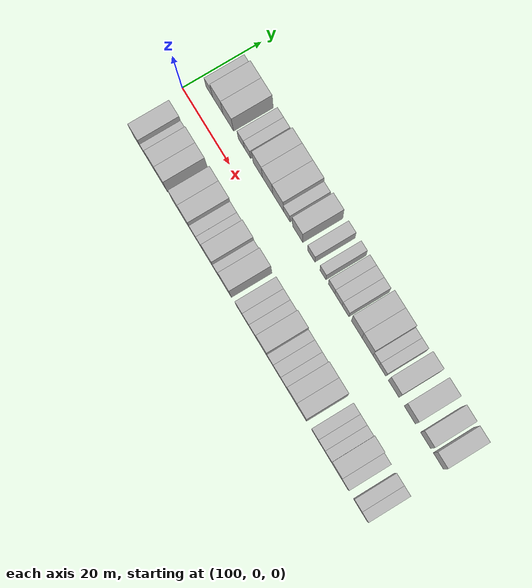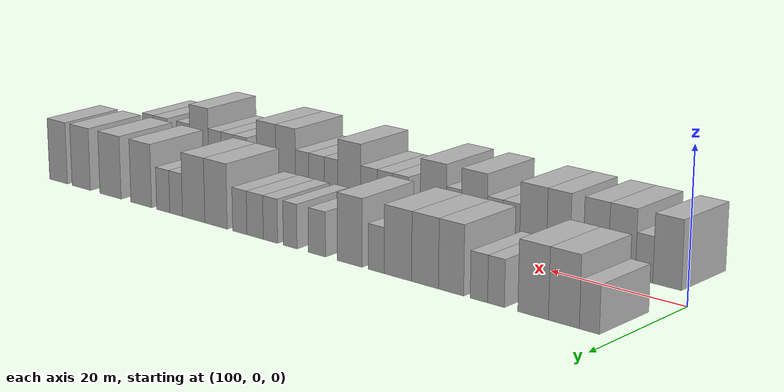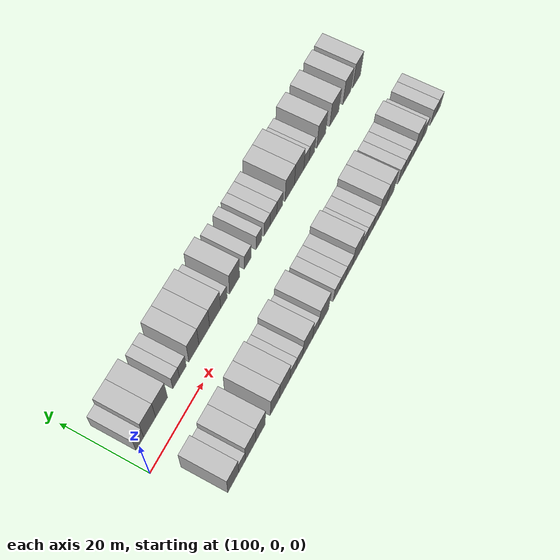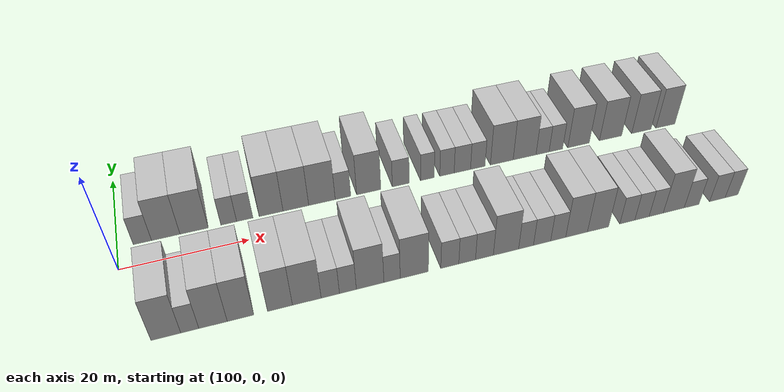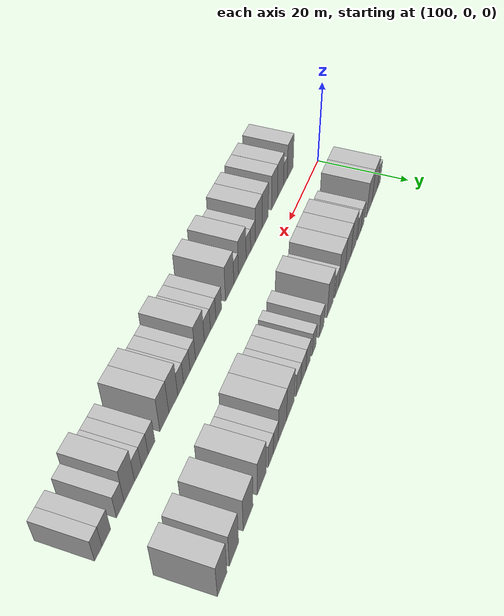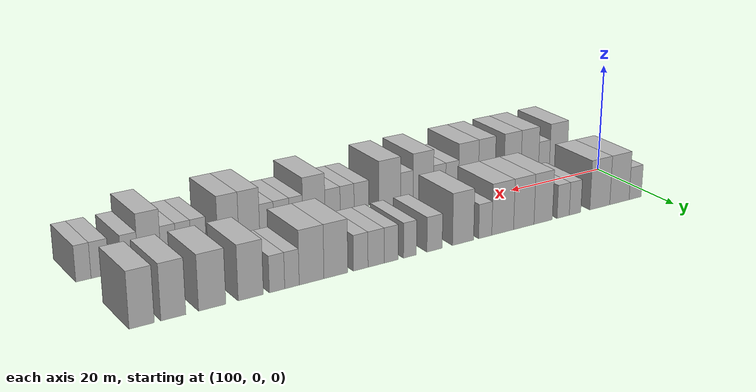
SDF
<sdf version="1.6">
 <world name="default">
  <model name="building_25">
   <static>1</static>
   <pose>103.8729 9.5000 0 0.000000 0.000000 1.570796</pose>
   <link name="link">
    <pose>0 0 3.00 0 0 0</pose>
    <collision name="collision"><geometry><box><size>10.0000 2.8097 6.0000</size></box></geometry></collision>
    <visual name="visual">
     <cast_shadows>0</cast_shadows>
     <geometry><box><size>10.0000 2.8097 6.0000</size></box></geometry>
     <material>
      <script>
       <uri>model://HANNAS_wall/materials/scripts</uri>
       <uri>model://HANNAS_wall/materials/textures</uri>
       <name>vrc/HANNAS_wall</name>
      </script>
     </material>
    </visual>
   </link>
  </model>
  <model name="building_26">
   <static>1</static>
   <pose>107.4853 9.5000 0 0.000000 0.000000 1.570796</pose>
   <link name="link">
    <pose>0 0 4.50 0 0 0</pose>
    <collision name="collision"><geometry><box><size>10.0000 4.4151 9.0000</size></box></geometry></collision>
    <visual name="visual">
     <cast_shadows>0</cast_shadows>
     <geometry><box><size>10.0000 4.4151 9.0000</size></box></geometry>
     <material>
      <script>
       <uri>model://HANNAS_wall/materials/scripts</uri>
       <uri>model://HANNAS_wall/materials/textures</uri>
       <name>vrc/HANNAS_wall</name>
      </script>
     </material>
    </visual>
   </link>
  </model>
  <model name="building_27">
   <static>1</static>
   <pose>111.9275 9.5000 0 0.000000 0.000000 1.570796</pose>
   <link name="link">
    <pose>0 0 4.50 0 0 0</pose>
    <collision name="collision"><geometry><box><size>10.0000 4.4693 9.0000</size></box></geometry></collision>
    <visual name="visual">
     <cast_shadows>0</cast_shadows>
     <geometry><box><size>10.0000 4.4693 9.0000</size></box></geometry>
     <material>
      <script>
       <uri>model://HANNAS_wall/materials/scripts</uri>
       <uri>model://HANNAS_wall/materials/textures</uri>
       <name>vrc/HANNAS_wall</name>
      </script>
     </material>
    </visual>
   </link>
  </model>
  <model name="building_28">
   <static>1</static>
   <pose>117.4270 9.5000 0 0.000000 0.000000 1.570796</pose>
   <link name="link">
    <pose>0 0 3.00 0 0 0</pose>
    <collision name="collision"><geometry><box><size>10.0000 2.5297 6.0000</size></box></geometry></collision>
    <visual name="visual">
     <cast_shadows>0</cast_shadows>
     <geometry><box><size>10.0000 2.5297 6.0000</size></box></geometry>
     <material>
      <script>
       <uri>model://HANNAS_wall/materials/scripts</uri>
       <uri>model://HANNAS_wall/materials/textures</uri>
       <name>vrc/HANNAS_wall</name>
      </script>
     </material>
    </visual>
   </link>
  </model>
  <model name="building_29">
   <static>1</static>
   <pose>120.0156 9.5000 0 0.000000 0.000000 1.570796</pose>
   <link name="link">
    <pose>0 0 3.00 0 0 0</pose>
    <collision name="collision"><geometry><box><size>10.0000 2.6473 6.0000</size></box></geometry></collision>
    <visual name="visual">
     <cast_shadows>0</cast_shadows>
     <geometry><box><size>10.0000 2.6473 6.0000</size></box></geometry>
     <material>
      <script>
       <uri>model://HANNAS_wall/materials/scripts</uri>
       <uri>model://HANNAS_wall/materials/textures</uri>
       <name>vrc/HANNAS_wall</name>
      </script>
     </material>
    </visual>
   </link>
  </model>
  <model name="building_30">
   <static>1</static>
   <pose>124.3036 9.5000 0 0.000000 0.000000 1.570796</pose>
   <link name="link">
    <pose>0 0 4.50 0 0 0</pose>
    <collision name="collision"><geometry><box><size>10.0000 3.9288 9.0000</size></box></geometry></collision>
    <visual name="visual">
     <cast_shadows>0</cast_shadows>
     <geometry><box><size>10.0000 3.9288 9.0000</size></box></geometry>
     <material>
      <script>
       <uri>model://HANNAS_wall/materials/scripts</uri>
       <uri>model://HANNAS_wall/materials/textures</uri>
       <name>vrc/HANNAS_wall</name>
      </script>
     </material>
    </visual>
   </link>
  </model>
  <model name="building_31">
   <static>1</static>
   <pose>128.4004 9.5000 0 0.000000 0.000000 1.570796</pose>
   <link name="link">
    <pose>0 0 4.50 0 0 0</pose>
    <collision name="collision"><geometry><box><size>10.0000 4.2649 9.0000</size></box></geometry></collision>
    <visual name="visual">
     <cast_shadows>0</cast_shadows>
     <geometry><box><size>10.0000 4.2649 9.0000</size></box></geometry>
     <material>
      <script>
       <uri>model://HANNAS_wall/materials/scripts</uri>
       <uri>model://HANNAS_wall/materials/textures</uri>
       <name>vrc/HANNAS_wall</name>
      </script>
     </material>
    </visual>
   </link>
  </model>
  <model name="building_32">
   <static>1</static>
   <pose>132.7663 9.5000 0 0.000000 0.000000 1.570796</pose>
   <link name="link">
    <pose>0 0 4.50 0 0 0</pose>
    <collision name="collision"><geometry><box><size>10.0000 4.4671 9.0000</size></box></geometry></collision>
    <visual name="visual">
     <cast_shadows>0</cast_shadows>
     <geometry><box><size>10.0000 4.4671 9.0000</size></box></geometry>
     <material>
      <script>
       <uri>model://HANNAS_wall/materials/scripts</uri>
       <uri>model://HANNAS_wall/materials/textures</uri>
       <name>vrc/HANNAS_wall</name>
      </script>
     </material>
    </visual>
   </link>
  </model>
  <model name="building_33">
   <static>1</static>
   <pose>136.3278 9.5000 0 0.000000 0.000000 1.570796</pose>
   <link name="link">
    <pose>0 0 3.00 0 0 0</pose>
    <collision name="collision"><geometry><box><size>10.0000 2.6558 6.0000</size></box></geometry></collision>
    <visual name="visual">
     <cast_shadows>0</cast_shadows>
     <geometry><box><size>10.0000 2.6558 6.0000</size></box></geometry>
     <material>
      <script>
       <uri>model://HANNAS_wall/materials/scripts</uri>
       <uri>model://HANNAS_wall/materials/textures</uri>
       <name>vrc/HANNAS_wall</name>
      </script>
     </material>
    </visual>
   </link>
  </model>
  <model name="building_34">
   <static>1</static>
   <pose>140.7529 9.5000 0 0.000000 0.000000 1.570796</pose>
   <link name="link">
    <pose>0 0 4.50 0 0 0</pose>
    <collision name="collision"><geometry><box><size>10.0000 4.1943 9.0000</size></box></geometry></collision>
    <visual name="visual">
     <cast_shadows>0</cast_shadows>
     <geometry><box><size>10.0000 4.1943 9.0000</size></box></geometry>
     <material>
      <script>
       <uri>model://HANNAS_wall/materials/scripts</uri>
       <uri>model://HANNAS_wall/materials/textures</uri>
       <name>vrc/HANNAS_wall</name>
      </script>
     </material>
    </visual>
   </link>
  </model>
  <model name="building_35">
   <static>1</static>
   <pose>146.3338 9.5000 0 0.000000 0.000000 1.570796</pose>
   <link name="link">
    <pose>0 0 3.00 0 0 0</pose>
    <collision name="collision"><geometry><box><size>10.0000 2.9676 6.0000</size></box></geometry></collision>
    <visual name="visual">
     <cast_shadows>0</cast_shadows>
     <geometry><box><size>10.0000 2.9676 6.0000</size></box></geometry>
     <material>
      <script>
       <uri>model://HANNAS_wall/materials/scripts</uri>
       <uri>model://HANNAS_wall/materials/textures</uri>
       <name>vrc/HANNAS_wall</name>
      </script>
     </material>
    </visual>
   </link>
  </model>
  <model name="building_36">
   <static>1</static>
   <pose>151.0428 9.5000 0 0.000000 0.000000 1.570796</pose>
   <link name="link">
    <pose>0 0 3.00 0 0 0</pose>
    <collision name="collision"><geometry><box><size>10.0000 2.4503 6.0000</size></box></geometry></collision>
    <visual name="visual">
     <cast_shadows>0</cast_shadows>
     <geometry><box><size>10.0000 2.4503 6.0000</size></box></geometry>
     <material>
      <script>
       <uri>model://HANNAS_wall/materials/scripts</uri>
       <uri>model://HANNAS_wall/materials/textures</uri>
       <name>vrc/HANNAS_wall</name>
      </script>
     </material>
    </visual>
   </link>
  </model>
  <model name="building_37">
   <static>1</static>
   <pose>154.5629 9.5000 0 0.000000 0.000000 1.570796</pose>
   <link name="link">
    <pose>0 0 3.00 0 0 0</pose>
    <collision name="collision"><geometry><box><size>10.0000 2.5899 6.0000</size></box></geometry></collision>
    <visual name="visual">
     <cast_shadows>0</cast_shadows>
     <geometry><box><size>10.0000 2.5899 6.0000</size></box></geometry>
     <material>
      <script>
       <uri>model://HANNAS_wall/materials/scripts</uri>
       <uri>model://HANNAS_wall/materials/textures</uri>
       <name>vrc/HANNAS_wall</name>
      </script>
     </material>
    </visual>
   </link>
  </model>
  <model name="building_38">
   <static>1</static>
   <pose>157.3477 9.5000 0 0.000000 0.000000 1.570796</pose>
   <link name="link">
    <pose>0 0 3.00 0 0 0</pose>
    <collision name="collision"><geometry><box><size>10.0000 2.9798 6.0000</size></box></geometry></collision>
    <visual name="visual">
     <cast_shadows>0</cast_shadows>
     <geometry><box><size>10.0000 2.9798 6.0000</size></box></geometry>
     <material>
      <script>
       <uri>model://HANNAS_wall/materials/scripts</uri>
       <uri>model://HANNAS_wall/materials/textures</uri>
       <name>vrc/HANNAS_wall</name>
      </script>
     </material>
    </visual>
   </link>
  </model>
  <model name="building_39">
   <static>1</static>
   <pose>160.1673 9.5000 0 0.000000 0.000000 1.570796</pose>
   <link name="link">
    <pose>0 0 3.00 0 0 0</pose>
    <collision name="collision"><geometry><box><size>10.0000 2.6594 6.0000</size></box></geometry></collision>
    <visual name="visual">
     <cast_shadows>0</cast_shadows>
     <geometry><box><size>10.0000 2.6594 6.0000</size></box></geometry>
     <material>
      <script>
       <uri>model://HANNAS_wall/materials/scripts</uri>
       <uri>model://HANNAS_wall/materials/textures</uri>
       <name>vrc/HANNAS_wall</name>
      </script>
     </material>
    </visual>
   </link>
  </model>
  <model name="building_40">
   <static>1</static>
   <pose>164.6145 9.5000 0 0.000000 0.000000 1.570796</pose>
   <link name="link">
    <pose>0 0 4.50 0 0 0</pose>
    <collision name="collision"><geometry><box><size>10.0000 4.2350 9.0000</size></box></geometry></collision>
    <visual name="visual">
     <cast_shadows>0</cast_shadows>
     <geometry><box><size>10.0000 4.2350 9.0000</size></box></geometry>
     <material>
      <script>
       <uri>model://HANNAS_wall/materials/scripts</uri>
       <uri>model://HANNAS_wall/materials/textures</uri>
       <name>vrc/HANNAS_wall</name>
      </script>
     </material>
    </visual>
   </link>
  </model>
  <model name="building_41">
   <static>1</static>
   <pose>168.8875 9.5000 0 0.000000 0.000000 1.570796</pose>
   <link name="link">
    <pose>0 0 4.50 0 0 0</pose>
    <collision name="collision"><geometry><box><size>10.0000 4.3110 9.0000</size></box></geometry></collision>
    <visual name="visual">
     <cast_shadows>0</cast_shadows>
     <geometry><box><size>10.0000 4.3110 9.0000</size></box></geometry>
     <material>
      <script>
       <uri>model://HANNAS_wall/materials/scripts</uri>
       <uri>model://HANNAS_wall/materials/textures</uri>
       <name>vrc/HANNAS_wall</name>
      </script>
     </material>
    </visual>
   </link>
  </model>
  <model name="building_42">
   <static>1</static>
   <pose>172.2855 9.5000 0 0.000000 0.000000 1.570796</pose>
   <link name="link">
    <pose>0 0 3.00 0 0 0</pose>
    <collision name="collision"><geometry><box><size>10.0000 2.4851 6.0000</size></box></geometry></collision>
    <visual name="visual">
     <cast_shadows>0</cast_shadows>
     <geometry><box><size>10.0000 2.4851 6.0000</size></box></geometry>
     <material>
      <script>
       <uri>model://HANNAS_wall/materials/scripts</uri>
       <uri>model://HANNAS_wall/materials/textures</uri>
       <name>vrc/HANNAS_wall</name>
      </script>
     </material>
    </visual>
   </link>
  </model>
  <model name="building_43">
   <static>1</static>
   <pose>174.8274 9.5000 0 0.000000 0.000000 1.570796</pose>
   <link name="link">
    <pose>0 0 3.00 0 0 0</pose>
    <collision name="collision"><geometry><box><size>10.0000 2.5986 6.0000</size></box></geometry></collision>
    <visual name="visual">
     <cast_shadows>0</cast_shadows>
     <geometry><box><size>10.0000 2.5986 6.0000</size></box></geometry>
     <material>
      <script>
       <uri>model://HANNAS_wall/materials/scripts</uri>
       <uri>model://HANNAS_wall/materials/textures</uri>
       <name>vrc/HANNAS_wall</name>
      </script>
     </material>
    </visual>
   </link>
  </model>
  <model name="building_44">
   <static>1</static>
   <pose>179.2178 9.5000 0 0.000000 0.000000 1.570796</pose>
   <link name="link">
    <pose>0 0 4.50 0 0 0</pose>
    <collision name="collision"><geometry><box><size>10.0000 4.1823 9.0000</size></box></geometry></collision>
    <visual name="visual">
     <cast_shadows>0</cast_shadows>
     <geometry><box><size>10.0000 4.1823 9.0000</size></box></geometry>
     <material>
      <script>
       <uri>model://HANNAS_wall/materials/scripts</uri>
       <uri>model://HANNAS_wall/materials/textures</uri>
       <name>vrc/HANNAS_wall</name>
      </script>
     </material>
    </visual>
   </link>
  </model>
  <model name="building_45">
   <static>1</static>
   <pose>185.5086 9.5000 0 0.000000 0.000000 1.570796</pose>
   <link name="link">
    <pose>0 0 4.50 0 0 0</pose>
    <collision name="collision"><geometry><box><size>10.0000 4.3992 9.0000</size></box></geometry></collision>
    <visual name="visual">
     <cast_shadows>0</cast_shadows>
     <geometry><box><size>10.0000 4.3992 9.0000</size></box></geometry>
     <material>
      <script>
       <uri>model://HANNAS_wall/materials/scripts</uri>
       <uri>model://HANNAS_wall/materials/textures</uri>
       <name>vrc/HANNAS_wall</name>
      </script>
     </material>
    </visual>
   </link>
  </model>
  <model name="building_46">
   <static>1</static>
   <pose>191.6624 9.5000 0 0.000000 0.000000 1.570796</pose>
   <link name="link">
    <pose>0 0 4.50 0 0 0</pose>
    <collision name="collision"><geometry><box><size>10.0000 3.9084 9.0000</size></box></geometry></collision>
    <visual name="visual">
     <cast_shadows>0</cast_shadows>
     <geometry><box><size>10.0000 3.9084 9.0000</size></box></geometry>
     <material>
      <script>
       <uri>model://HANNAS_wall/materials/scripts</uri>
       <uri>model://HANNAS_wall/materials/textures</uri>
       <name>vrc/HANNAS_wall</name>
      </script>
     </material>
    </visual>
   </link>
  </model>
  <model name="building_47">
   <static>1</static>
   <pose>196.5463 9.5000 0 0.000000 0.000000 1.570796</pose>
   <link name="link">
    <pose>0 0 4.50 0 0 0</pose>
    <collision name="collision"><geometry><box><size>10.0000 3.8595 9.0000</size></box></geometry></collision>
    <visual name="visual">
     <cast_shadows>0</cast_shadows>
     <geometry><box><size>10.0000 3.8595 9.0000</size></box></geometry>
     <material>
      <script>
       <uri>model://HANNAS_wall/materials/scripts</uri>
       <uri>model://HANNAS_wall/materials/textures</uri>
       <name>vrc/HANNAS_wall</name>
      </script>
     </material>
    </visual>
   </link>
  </model>
  <model name="building_74">
   <static>1</static>
   <pose>105.8778 -9.5000 0 0.000000 0.000000 1.570796</pose>
   <link name="link">
    <pose>0 0 4.50 0 0 0</pose>
    <collision name="collision"><geometry><box><size>10.0000 4.1603 9.0000</size></box></geometry></collision>
    <visual name="visual">
     <cast_shadows>0</cast_shadows>
     <geometry><box><size>10.0000 4.1603 9.0000</size></box></geometry>
     <material>
      <script>
       <uri>model://HANNAS_wall/materials/scripts</uri>
       <uri>model://HANNAS_wall/materials/textures</uri>
       <name>vrc/HANNAS_wall</name>
      </script>
     </material>
    </visual>
   </link>
  </model>
  <model name="building_75">
   <static>1</static>
   <pose>109.2300 -9.5000 0 0.000000 0.000000 1.570796</pose>
   <link name="link">
    <pose>0 0 3.00 0 0 0</pose>
    <collision name="collision"><geometry><box><size>10.0000 2.5441 6.0000</size></box></geometry></collision>
    <visual name="visual">
     <cast_shadows>0</cast_shadows>
     <geometry><box><size>10.0000 2.5441 6.0000</size></box></geometry>
     <material>
      <script>
       <uri>model://HANNAS_wall/materials/scripts</uri>
       <uri>model://HANNAS_wall/materials/textures</uri>
       <name>vrc/HANNAS_wall</name>
      </script>
     </material>
    </visual>
   </link>
  </model>
  <model name="building_76">
   <static>1</static>
   <pose>112.5329 -9.5000 0 0.000000 0.000000 1.570796</pose>
   <link name="link">
    <pose>0 0 4.50 0 0 0</pose>
    <collision name="collision"><geometry><box><size>10.0000 4.0617 9.0000</size></box></geometry></collision>
    <visual name="visual">
     <cast_shadows>0</cast_shadows>
     <geometry><box><size>10.0000 4.0617 9.0000</size></box></geometry>
     <material>
      <script>
       <uri>model://HANNAS_wall/materials/scripts</uri>
       <uri>model://HANNAS_wall/materials/textures</uri>
       <name>vrc/HANNAS_wall</name>
      </script>
     </material>
    </visual>
   </link>
  </model>
  <model name="building_77">
   <static>1</static>
   <pose>116.4882 -9.5000 0 0.000000 0.000000 1.570796</pose>
   <link name="link">
    <pose>0 0 4.50 0 0 0</pose>
    <collision name="collision"><geometry><box><size>10.0000 3.8488 9.0000</size></box></geometry></collision>
    <visual name="visual">
     <cast_shadows>0</cast_shadows>
     <geometry><box><size>10.0000 3.8488 9.0000</size></box></geometry>
     <material>
      <script>
       <uri>model://HANNAS_wall/materials/scripts</uri>
       <uri>model://HANNAS_wall/materials/textures</uri>
       <name>vrc/HANNAS_wall</name>
      </script>
     </material>
    </visual>
   </link>
  </model>
  <model name="building_78">
   <static>1</static>
   <pose>122.2571 -9.5000 0 0.000000 0.000000 1.570796</pose>
   <link name="link">
    <pose>0 0 4.50 0 0 0</pose>
    <collision name="collision"><geometry><box><size>10.0000 3.6890 9.0000</size></box></geometry></collision>
    <visual name="visual">
     <cast_shadows>0</cast_shadows>
     <geometry><box><size>10.0000 3.6890 9.0000</size></box></geometry>
     <material>
      <script>
       <uri>model://HANNAS_wall/materials/scripts</uri>
       <uri>model://HANNAS_wall/materials/textures</uri>
       <name>vrc/HANNAS_wall</name>
      </script>
     </material>
    </visual>
   </link>
  </model>
  <model name="building_79">
   <static>1</static>
   <pose>126.2579 -9.5000 0 0.000000 0.000000 1.570796</pose>
   <link name="link">
    <pose>0 0 4.50 0 0 0</pose>
    <collision name="collision"><geometry><box><size>10.0000 4.3126 9.0000</size></box></geometry></collision>
    <visual name="visual">
     <cast_shadows>0</cast_shadows>
     <geometry><box><size>10.0000 4.3126 9.0000</size></box></geometry>
     <material>
      <script>
       <uri>model://HANNAS_wall/materials/scripts</uri>
       <uri>model://HANNAS_wall/materials/textures</uri>
       <name>vrc/HANNAS_wall</name>
      </script>
     </material>
    </visual>
   </link>
  </model>
  <model name="building_80">
   <static>1</static>
   <pose>129.8001 -9.5000 0 0.000000 0.000000 1.570796</pose>
   <link name="link">
    <pose>0 0 3.00 0 0 0</pose>
    <collision name="collision"><geometry><box><size>10.0000 2.7719 6.0000</size></box></geometry></collision>
    <visual name="visual">
     <cast_shadows>0</cast_shadows>
     <geometry><box><size>10.0000 2.7719 6.0000</size></box></geometry>
     <material>
      <script>
       <uri>model://HANNAS_wall/materials/scripts</uri>
       <uri>model://HANNAS_wall/materials/textures</uri>
       <name>vrc/HANNAS_wall</name>
      </script>
     </material>
    </visual>
   </link>
  </model>
  <model name="building_81">
   <static>1</static>
   <pose>132.4791 -9.5000 0 0.000000 0.000000 1.570796</pose>
   <link name="link">
    <pose>0 0 3.00 0 0 0</pose>
    <collision name="collision"><geometry><box><size>10.0000 2.5860 6.0000</size></box></geometry></collision>
    <visual name="visual">
     <cast_shadows>0</cast_shadows>
     <geometry><box><size>10.0000 2.5860 6.0000</size></box></geometry>
     <material>
      <script>
       <uri>model://HANNAS_wall/materials/scripts</uri>
       <uri>model://HANNAS_wall/materials/textures</uri>
       <name>vrc/HANNAS_wall</name>
      </script>
     </material>
    </visual>
   </link>
  </model>
  <model name="building_82">
   <static>1</static>
   <pose>135.9163 -9.5000 0 0.000000 0.000000 1.570796</pose>
   <link name="link">
    <pose>0 0 4.50 0 0 0</pose>
    <collision name="collision"><geometry><box><size>10.0000 4.2884 9.0000</size></box></geometry></collision>
    <visual name="visual">
     <cast_shadows>0</cast_shadows>
     <geometry><box><size>10.0000 4.2884 9.0000</size></box></geometry>
     <material>
      <script>
       <uri>model://HANNAS_wall/materials/scripts</uri>
       <uri>model://HANNAS_wall/materials/textures</uri>
       <name>vrc/HANNAS_wall</name>
      </script>
     </material>
    </visual>
   </link>
  </model>
  <model name="building_83">
   <static>1</static>
   <pose>139.3373 -9.5000 0 0.000000 0.000000 1.570796</pose>
   <link name="link">
    <pose>0 0 3.00 0 0 0</pose>
    <collision name="collision"><geometry><box><size>10.0000 2.5536 6.0000</size></box></geometry></collision>
    <visual name="visual">
     <cast_shadows>0</cast_shadows>
     <geometry><box><size>10.0000 2.5536 6.0000</size></box></geometry>
     <material>
      <script>
       <uri>model://HANNAS_wall/materials/scripts</uri>
       <uri>model://HANNAS_wall/materials/textures</uri>
       <name>vrc/HANNAS_wall</name>
      </script>
     </material>
    </visual>
   </link>
  </model>
  <model name="building_84">
   <static>1</static>
   <pose>142.8512 -9.5000 0 0.000000 0.000000 1.570796</pose>
   <link name="link">
    <pose>0 0 4.50 0 0 0</pose>
    <collision name="collision"><geometry><box><size>10.0000 4.4742 9.0000</size></box></geometry></collision>
    <visual name="visual">
     <cast_shadows>0</cast_shadows>
     <geometry><box><size>10.0000 4.4742 9.0000</size></box></geometry>
     <material>
      <script>
       <uri>model://HANNAS_wall/materials/scripts</uri>
       <uri>model://HANNAS_wall/materials/textures</uri>
       <name>vrc/HANNAS_wall</name>
      </script>
     </material>
    </visual>
   </link>
  </model>
  <model name="building_85">
   <static>1</static>
   <pose>148.5441 -9.5000 0 0.000000 0.000000 1.570796</pose>
   <link name="link">
    <pose>0 0 3.00 0 0 0</pose>
    <collision name="collision"><geometry><box><size>10.0000 2.9117 6.0000</size></box></geometry></collision>
    <visual name="visual">
     <cast_shadows>0</cast_shadows>
     <geometry><box><size>10.0000 2.9117 6.0000</size></box></geometry>
     <material>
      <script>
       <uri>model://HANNAS_wall/materials/scripts</uri>
       <uri>model://HANNAS_wall/materials/textures</uri>
       <name>vrc/HANNAS_wall</name>
      </script>
     </material>
    </visual>
   </link>
  </model>
  <model name="building_86">
   <static>1</static>
   <pose>151.3655 -9.5000 0 0.000000 0.000000 1.570796</pose>
   <link name="link">
    <pose>0 0 3.00 0 0 0</pose>
    <collision name="collision"><geometry><box><size>10.0000 2.7312 6.0000</size></box></geometry></collision>
    <visual name="visual">
     <cast_shadows>0</cast_shadows>
     <geometry><box><size>10.0000 2.7312 6.0000</size></box></geometry>
     <material>
      <script>
       <uri>model://HANNAS_wall/materials/scripts</uri>
       <uri>model://HANNAS_wall/materials/textures</uri>
       <name>vrc/HANNAS_wall</name>
      </script>
     </material>
    </visual>
   </link>
  </model>
  <model name="building_87">
   <static>1</static>
   <pose>154.2077 -9.5000 0 0.000000 0.000000 1.570796</pose>
   <link name="link">
    <pose>0 0 3.00 0 0 0</pose>
    <collision name="collision"><geometry><box><size>10.0000 2.9531 6.0000</size></box></geometry></collision>
    <visual name="visual">
     <cast_shadows>0</cast_shadows>
     <geometry><box><size>10.0000 2.9531 6.0000</size></box></geometry>
     <material>
      <script>
       <uri>model://HANNAS_wall/materials/scripts</uri>
       <uri>model://HANNAS_wall/materials/textures</uri>
       <name>vrc/HANNAS_wall</name>
      </script>
     </material>
    </visual>
   </link>
  </model>
  <model name="building_88">
   <static>1</static>
   <pose>157.8018 -9.5000 0 0.000000 0.000000 1.570796</pose>
   <link name="link">
    <pose>0 0 4.50 0 0 0</pose>
    <collision name="collision"><geometry><box><size>10.0000 4.2352 9.0000</size></box></geometry></collision>
    <visual name="visual">
     <cast_shadows>0</cast_shadows>
     <geometry><box><size>10.0000 4.2352 9.0000</size></box></geometry>
     <material>
      <script>
       <uri>model://HANNAS_wall/materials/scripts</uri>
       <uri>model://HANNAS_wall/materials/textures</uri>
       <name>vrc/HANNAS_wall</name>
      </script>
     </material>
    </visual>
   </link>
  </model>
  <model name="building_89">
   <static>1</static>
   <pose>161.1747 -9.5000 0 0.000000 0.000000 1.570796</pose>
   <link name="link">
    <pose>0 0 3.00 0 0 0</pose>
    <collision name="collision"><geometry><box><size>10.0000 2.5106 6.0000</size></box></geometry></collision>
    <visual name="visual">
     <cast_shadows>0</cast_shadows>
     <geometry><box><size>10.0000 2.5106 6.0000</size></box></geometry>
     <material>
      <script>
       <uri>model://HANNAS_wall/materials/scripts</uri>
       <uri>model://HANNAS_wall/materials/textures</uri>
       <name>vrc/HANNAS_wall</name>
      </script>
     </material>
    </visual>
   </link>
  </model>
  <model name="building_90">
   <static>1</static>
   <pose>163.8976 -9.5000 0 0.000000 0.000000 1.570796</pose>
   <link name="link">
    <pose>0 0 3.00 0 0 0</pose>
    <collision name="collision"><geometry><box><size>10.0000 2.9354 6.0000</size></box></geometry></collision>
    <visual name="visual">
     <cast_shadows>0</cast_shadows>
     <geometry><box><size>10.0000 2.9354 6.0000</size></box></geometry>
     <material>
      <script>
       <uri>model://HANNAS_wall/materials/scripts</uri>
       <uri>model://HANNAS_wall/materials/textures</uri>
       <name>vrc/HANNAS_wall</name>
      </script>
     </material>
    </visual>
   </link>
  </model>
  <model name="building_91">
   <static>1</static>
   <pose>166.6589 -9.5000 0 0.000000 0.000000 1.570796</pose>
   <link name="link">
    <pose>0 0 3.00 0 0 0</pose>
    <collision name="collision"><geometry><box><size>10.0000 2.5870 6.0000</size></box></geometry></collision>
    <visual name="visual">
     <cast_shadows>0</cast_shadows>
     <geometry><box><size>10.0000 2.5870 6.0000</size></box></geometry>
     <material>
      <script>
       <uri>model://HANNAS_wall/materials/scripts</uri>
       <uri>model://HANNAS_wall/materials/textures</uri>
       <name>vrc/HANNAS_wall</name>
      </script>
     </material>
    </visual>
   </link>
  </model>
  <model name="building_92">
   <static>1</static>
   <pose>169.8517 -9.5000 0 0.000000 0.000000 1.570796</pose>
   <link name="link">
    <pose>0 0 4.50 0 0 0</pose>
    <collision name="collision"><geometry><box><size>10.0000 3.7985 9.0000</size></box></geometry></collision>
    <visual name="visual">
     <cast_shadows>0</cast_shadows>
     <geometry><box><size>10.0000 3.7985 9.0000</size></box></geometry>
     <material>
      <script>
       <uri>model://HANNAS_wall/materials/scripts</uri>
       <uri>model://HANNAS_wall/materials/textures</uri>
       <name>vrc/HANNAS_wall</name>
      </script>
     </material>
    </visual>
   </link>
  </model>
  <model name="building_93">
   <static>1</static>
   <pose>173.6229 -9.5000 0 0.000000 0.000000 1.570796</pose>
   <link name="link">
    <pose>0 0 4.50 0 0 0</pose>
    <collision name="collision"><geometry><box><size>10.0000 3.7440 9.0000</size></box></geometry></collision>
    <visual name="visual">
     <cast_shadows>0</cast_shadows>
     <geometry><box><size>10.0000 3.7440 9.0000</size></box></geometry>
     <material>
      <script>
       <uri>model://HANNAS_wall/materials/scripts</uri>
       <uri>model://HANNAS_wall/materials/textures</uri>
       <name>vrc/HANNAS_wall</name>
      </script>
     </material>
    </visual>
   </link>
  </model>
  <model name="building_94">
   <static>1</static>
   <pose>178.8307 -9.5000 0 0.000000 0.000000 1.570796</pose>
   <link name="link">
    <pose>0 0 3.00 0 0 0</pose>
    <collision name="collision"><geometry><box><size>10.0000 2.6715 6.0000</size></box></geometry></collision>
    <visual name="visual">
     <cast_shadows>0</cast_shadows>
     <geometry><box><size>10.0000 2.6715 6.0000</size></box></geometry>
     <material>
      <script>
       <uri>model://HANNAS_wall/materials/scripts</uri>
       <uri>model://HANNAS_wall/materials/textures</uri>
       <name>vrc/HANNAS_wall</name>
      </script>
     </material>
    </visual>
   </link>
  </model>
  <model name="building_95">
   <static>1</static>
   <pose>181.4575 -9.5000 0 0.000000 0.000000 1.570796</pose>
   <link name="link">
    <pose>0 0 3.00 0 0 0</pose>
    <collision name="collision"><geometry><box><size>10.0000 2.5821 6.0000</size></box></geometry></collision>
    <visual name="visual">
     <cast_shadows>0</cast_shadows>
     <geometry><box><size>10.0000 2.5821 6.0000</size></box></geometry>
     <material>
      <script>
       <uri>model://HANNAS_wall/materials/scripts</uri>
       <uri>model://HANNAS_wall/materials/textures</uri>
       <name>vrc/HANNAS_wall</name>
      </script>
     </material>
    </visual>
   </link>
  </model>
  <model name="building_96">
   <static>1</static>
   <pose>184.0399 -9.5000 0 0.000000 0.000000 1.570796</pose>
   <link name="link">
    <pose>0 0 3.00 0 0 0</pose>
    <collision name="collision"><geometry><box><size>10.0000 2.5826 6.0000</size></box></geometry></collision>
    <visual name="visual">
     <cast_shadows>0</cast_shadows>
     <geometry><box><size>10.0000 2.5826 6.0000</size></box></geometry>
     <material>
      <script>
       <uri>model://HANNAS_wall/materials/scripts</uri>
       <uri>model://HANNAS_wall/materials/textures</uri>
       <name>vrc/HANNAS_wall</name>
      </script>
     </material>
    </visual>
   </link>
  </model>
  <model name="building_97">
   <static>1</static>
   <pose>187.2645 -9.5000 0 0.000000 0.000000 1.570796</pose>
   <link name="link">
    <pose>0 0 4.50 0 0 0</pose>
    <collision name="collision"><geometry><box><size>10.0000 3.8667 9.0000</size></box></geometry></collision>
    <visual name="visual">
     <cast_shadows>0</cast_shadows>
     <geometry><box><size>10.0000 3.8667 9.0000</size></box></geometry>
     <material>
      <script>
       <uri>model://HANNAS_wall/materials/scripts</uri>
       <uri>model://HANNAS_wall/materials/textures</uri>
       <name>vrc/HANNAS_wall</name>
      </script>
     </material>
    </visual>
   </link>
  </model>
  <model name="building_98">
   <static>1</static>
   <pose>190.5794 -9.5000 0 0.000000 0.000000 1.570796</pose>
   <link name="link">
    <pose>0 0 3.00 0 0 0</pose>
    <collision name="collision"><geometry><box><size>10.0000 2.7631 6.0000</size></box></geometry></collision>
    <visual name="visual">
     <cast_shadows>0</cast_shadows>
     <geometry><box><size>10.0000 2.7631 6.0000</size></box></geometry>
     <material>
      <script>
       <uri>model://HANNAS_wall/materials/scripts</uri>
       <uri>model://HANNAS_wall/materials/textures</uri>
       <name>vrc/HANNAS_wall</name>
      </script>
     </material>
    </visual>
   </link>
  </model>
  <model name="building_99">
   <static>1</static>
   <pose>195.4271 -9.5000 0 0.000000 0.000000 1.570796</pose>
   <link name="link">
    <pose>0 0 3.00 0 0 0</pose>
    <collision name="collision"><geometry><box><size>10.0000 2.9324 6.0000</size></box></geometry></collision>
    <visual name="visual">
     <cast_shadows>0</cast_shadows>
     <geometry><box><size>10.0000 2.9324 6.0000</size></box></geometry>
     <material>
      <script>
       <uri>model://HANNAS_wall/materials/scripts</uri>
       <uri>model://HANNAS_wall/materials/textures</uri>
       <name>vrc/HANNAS_wall</name>
      </script>
     </material>
    </visual>
   </link>
  </model>
  <model name="building_100">
   <static>1</static>
   <pose>198.1188 -9.5000 0 0.000000 0.000000 1.570796</pose>
   <link name="link">
    <pose>0 0 3.00 0 0 0</pose>
    <collision name="collision"><geometry><box><size>10.0000 2.4510 6.0000</size></box></geometry></collision>
    <visual name="visual">
     <cast_shadows>0</cast_shadows>
     <geometry><box><size>10.0000 2.4510 6.0000</size></box></geometry>
     <material>
      <script>
       <uri>model://HANNAS_wall/materials/scripts</uri>
       <uri>model://HANNAS_wall/materials/textures</uri>
       <name>vrc/HANNAS_wall</name>
      </script>
     </material>
    </visual>
   </link>
  </model>
 </world>
</sdf>
